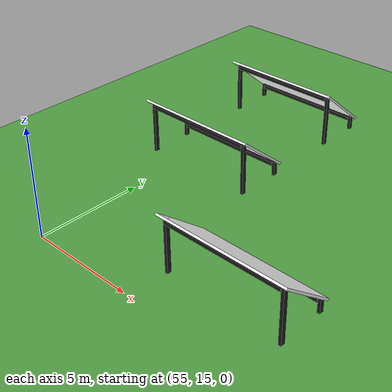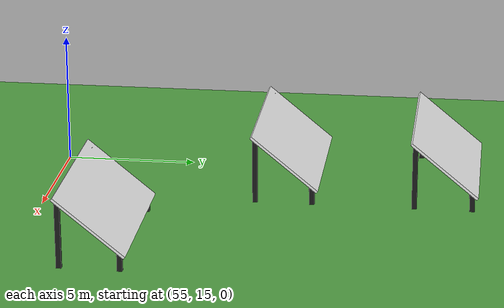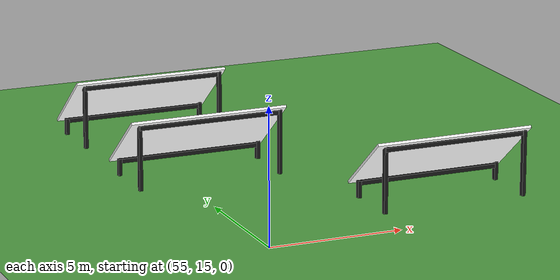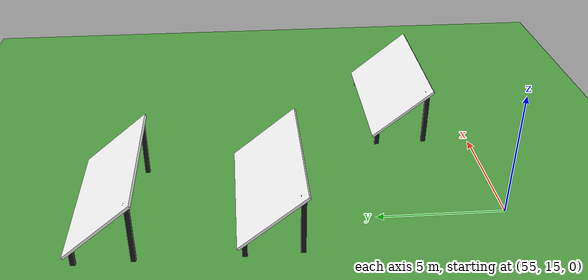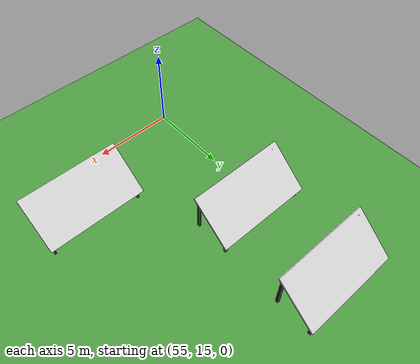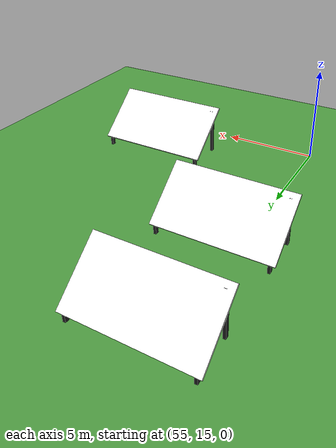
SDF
<sdf version="1.6">
 <world name="default">
  <model name="panel_7_3">
   <static>1</static>
   <link name="link_1">
    <inertial>
     <mass>1.98638</mass>
     <inertia><ixx>1.74251</ixx><ixy>0</ixy><ixz>0</ixz><iyy>6.11467</iyy><iyz>0</iyz><izz>7.85383</izz></inertia>
    </inertial>
    <pose>-0.040001 0.043327 0.560753 -0.688467 0 0</pose>
    <visual name="visual">
     <geometry><box><size>6.07696 3.24293 0.100789</size></box></geometry>
     <material>
      <lighting>1</lighting>
      <script>
       <uri>model://new_solar/materials/scripts</uri>
       <uri>model://new_solar/materials/textures</uri>
       <name>solar</name>
      </script>
      <shader type="pixel"><normal_map>__default__</normal_map></shader>
      <ambient>1 1 1 1</ambient>
      <diffuse>1 1 1 1</diffuse>
      <specular>0 0 0 1</specular>
      <emissive>0 0 0 1</emissive>
     </material>
    </visual>
    <collision name="collision">
     <geometry><box><size>6.07696 3.24293 0.100789</size></box></geometry>
     <surface>
      <friction>
       <ode><mu>1</mu><mu2>1</mu2><fdir1>0 0 0</fdir1><slip1>0</slip1><slip2>0</slip2></ode>
       <torsional>
        <coefficient>1</coefficient>
        <patch_radius>0</patch_radius>
        <surface_radius>0</surface_radius>
        <use_patch_radius>1</use_patch_radius>
        <ode><slip>0</slip></ode>
       </torsional>
      </friction>
      <bounce><restitution_coefficient>0</restitution_coefficient><threshold>1e+06</threshold></bounce>
      <contact>
       <collide_without_contact>0</collide_without_contact>
       <collide_without_contact_bitmask>1</collide_without_contact_bitmask>
       <collide_bitmask>1</collide_bitmask>
       <ode>
        <soft_cfm>0</soft_cfm>
        <soft_erp>0.2</soft_erp>
        <kp>1e+13</kp>
        <kd>1</kd>
        <max_vel>0.01</max_vel>
        <min_depth>0</min_depth>
       </ode>
       <bullet>
        <split_impulse>1</split_impulse>
        <split_impulse_penetration_threshold>-0.01</split_impulse_penetration_threshold>
        <soft_cfm>0</soft_cfm>
        <soft_erp>0.2</soft_erp>
        <kp>1e+13</kp>
        <kd>1</kd>
       </bullet>
      </contact>
     </surface>
    </collision>
   </link>
   <link name="link_2">
    <inertial>
     <mass>0.0207671</mass>
     <inertia>
      <ixx>0.0012143</ixx>
      <ixy>0</ixy>
      <ixz>0</ixz>
      <iyy>0.00118465</iyy>
      <iyz>0</iyz>
      <izz>9.301e-05</izz>
     </inertia>
    </inertial>
    <pose>2.8032 1.09463 -0.744944 0 -0 0</pose>
    <visual name="visual">
     <geometry><box><size>0.135288 0.188253 0.81623</size></box></geometry>
     <material>
      <lighting>1</lighting>
      <script><uri>file://media/materials/scripts/gazebo.material</uri><name>Gazebo/Black</name></script>
      <shader type="pixel"><normal_map>__default__</normal_map></shader>
      <ambient>0 0 0 1</ambient>
      <diffuse>0 0 0 1</diffuse>
      <specular>0.1 0.1 0.1 1</specular>
      <emissive>0 0 0 1</emissive>
     </material>
    </visual>
    <collision name="collision">
     <geometry><box><size>0.135288 0.188253 0.81623</size></box></geometry>
     <surface>
      <friction>
       <ode><mu>1</mu><mu2>1</mu2><fdir1>0 0 0</fdir1><slip1>0</slip1><slip2>0</slip2></ode>
       <torsional>
        <coefficient>1</coefficient>
        <patch_radius>0</patch_radius>
        <surface_radius>0</surface_radius>
        <use_patch_radius>1</use_patch_radius>
        <ode><slip>0</slip></ode>
       </torsional>
      </friction>
      <bounce><restitution_coefficient>0</restitution_coefficient><threshold>1e+06</threshold></bounce>
      <contact>
       <collide_without_contact>0</collide_without_contact>
       <collide_without_contact_bitmask>1</collide_without_contact_bitmask>
       <collide_bitmask>1</collide_bitmask>
       <ode>
        <soft_cfm>0</soft_cfm>
        <soft_erp>0.2</soft_erp>
        <kp>1e+13</kp>
        <kd>1</kd>
        <max_vel>0.01</max_vel>
        <min_depth>0</min_depth>
       </ode>
       <bullet>
        <split_impulse>1</split_impulse>
        <split_impulse_penetration_threshold>-0.01</split_impulse_penetration_threshold>
        <soft_cfm>0</soft_cfm>
        <soft_erp>0.2</soft_erp>
        <kp>1e+13</kp>
        <kd>1</kd>
       </bullet>
      </contact>
     </surface>
    </collision>
   </link>
   <link name="link_2_clone">
    <inertial>
     <mass>0.0207671</mass>
     <inertia>
      <ixx>0.0012143</ixx>
      <ixy>0</ixy>
      <ixz>0</ixz>
      <iyy>0.00118465</iyy>
      <iyz>0</iyz>
      <izz>9.301e-05</izz>
     </inertia>
    </inertial>
    <pose>-2.7581 1.05673 -0.787934 0 -0 0</pose>
    <visual name="visual">
     <geometry><box><size>0.135288 0.188253 0.81623</size></box></geometry>
     <material>
      <lighting>1</lighting>
      <script><uri>file://media/materials/scripts/gazebo.material</uri><name>Gazebo/Black</name></script>
      <shader type="pixel"><normal_map>__default__</normal_map></shader>
      <ambient>0 0 0 1</ambient>
      <diffuse>0 0 0 1</diffuse>
      <specular>0.1 0.1 0.1 1</specular>
      <emissive>0 0 0 1</emissive>
     </material>
    </visual>
    <collision name="collision">
     <geometry><box><size>0.135288 0.188253 0.81623</size></box></geometry>
     <surface>
      <friction>
       <ode><mu>1</mu><mu2>1</mu2><fdir1>0 0 0</fdir1><slip1>0</slip1><slip2>0</slip2></ode>
       <torsional>
        <coefficient>1</coefficient>
        <patch_radius>0</patch_radius>
        <surface_radius>0</surface_radius>
        <use_patch_radius>1</use_patch_radius>
        <ode><slip>0</slip></ode>
       </torsional>
      </friction>
      <bounce><restitution_coefficient>0</restitution_coefficient><threshold>1e+06</threshold></bounce>
      <contact>
       <collide_without_contact>0</collide_without_contact>
       <collide_without_contact_bitmask>1</collide_without_contact_bitmask>
       <collide_bitmask>1</collide_bitmask>
       <ode>
        <soft_cfm>0</soft_cfm>
        <soft_erp>0.2</soft_erp>
        <kp>1e+13</kp>
        <kd>1</kd>
        <max_vel>0.01</max_vel>
        <min_depth>0</min_depth>
       </ode>
       <bullet>
        <split_impulse>1</split_impulse>
        <split_impulse_penetration_threshold>-0.01</split_impulse_penetration_threshold>
        <soft_cfm>0</soft_cfm>
        <soft_erp>0.2</soft_erp>
        <kp>1e+13</kp>
        <kd>1</kd>
       </bullet>
      </contact>
     </surface>
    </collision>
   </link>
   <link name="link_2_clone_clone_clone">
    <inertial>
     <mass>0.0712376</mass>
     <inertia>
      <ixx>0.0467501</ixx>
      <ixy>0</ixy>
      <ixz>0</ixz>
      <iyy>0.0466484</iyy>
      <iyz>0</iyz>
      <izz>0.00031904</izz>
     </inertia>
    </inertial>
    <pose>2.7925 -1.06517 0.041693 0 -0 0</pose>
    <visual name="visual">
     <geometry><box><size>0.135288 0.188253 2.79994</size></box></geometry>
     <material>
      <lighting>1</lighting>
      <script><uri>file://media/materials/scripts/gazebo.material</uri><name>Gazebo/Black</name></script>
      <shader type="pixel"><normal_map>__default__</normal_map></shader>
      <ambient>0 0 0 1</ambient>
      <diffuse>0 0 0 1</diffuse>
      <specular>0.1 0.1 0.1 1</specular>
      <emissive>0 0 0 1</emissive>
     </material>
    </visual>
    <collision name="collision">
     <geometry><box><size>0.135288 0.188253 2.79994</size></box></geometry>
     <surface>
      <friction>
       <ode><mu>1</mu><mu2>1</mu2><fdir1>0 0 0</fdir1><slip1>0</slip1><slip2>0</slip2></ode>
       <torsional>
        <coefficient>1</coefficient>
        <patch_radius>0</patch_radius>
        <surface_radius>0</surface_radius>
        <use_patch_radius>1</use_patch_radius>
        <ode><slip>0</slip></ode>
       </torsional>
      </friction>
      <bounce><restitution_coefficient>0</restitution_coefficient><threshold>1e+06</threshold></bounce>
      <contact>
       <collide_without_contact>0</collide_without_contact>
       <collide_without_contact_bitmask>1</collide_without_contact_bitmask>
       <collide_bitmask>1</collide_bitmask>
       <ode>
        <soft_cfm>0</soft_cfm>
        <soft_erp>0.2</soft_erp>
        <kp>1e+13</kp>
        <kd>1</kd>
        <max_vel>0.01</max_vel>
        <min_depth>0</min_depth>
       </ode>
       <bullet>
        <split_impulse>1</split_impulse>
        <split_impulse_penetration_threshold>-0.01</split_impulse_penetration_threshold>
        <soft_cfm>0</soft_cfm>
        <soft_erp>0.2</soft_erp>
        <kp>1e+13</kp>
        <kd>1</kd>
       </bullet>
      </contact>
     </surface>
    </collision>
   </link>
   <link name="link_2_clone_clone_clone_clone">
    <inertial>
     <mass>0.0712376</mass>
     <inertia>
      <ixx>0.0467501</ixx>
      <ixy>0</ixy>
      <ixz>0</ixz>
      <iyy>0.0466484</iyy>
      <iyz>0</iyz>
      <izz>0.00031904</izz>
     </inertia>
    </inertial>
    <pose>-2.71279 -1.03577 0.041693 0 -0 0</pose>
    <visual name="visual">
     <geometry><box><size>0.135288 0.188253 2.79994</size></box></geometry>
     <material>
      <lighting>1</lighting>
      <script><uri>file://media/materials/scripts/gazebo.material</uri><name>Gazebo/Black</name></script>
      <shader type="pixel"><normal_map>__default__</normal_map></shader>
      <ambient>0 0 0 1</ambient>
      <diffuse>0 0 0 1</diffuse>
      <specular>0.1 0.1 0.1 1</specular>
      <emissive>0 0 0 1</emissive>
     </material>
    </visual>
    <collision name="collision">
     <geometry><box><size>0.135288 0.188253 2.79994</size></box></geometry>
     <surface>
      <friction>
       <ode><mu>1</mu><mu2>1</mu2><fdir1>0 0 0</fdir1><slip1>0</slip1><slip2>0</slip2></ode>
       <torsional>
        <coefficient>1</coefficient>
        <patch_radius>0</patch_radius>
        <surface_radius>0</surface_radius>
        <use_patch_radius>1</use_patch_radius>
        <ode><slip>0</slip></ode>
       </torsional>
      </friction>
      <bounce><restitution_coefficient>0</restitution_coefficient><threshold>1e+06</threshold></bounce>
      <contact>
       <collide_without_contact>0</collide_without_contact>
       <collide_without_contact_bitmask>1</collide_without_contact_bitmask>
       <collide_bitmask>1</collide_bitmask>
       <ode>
        <soft_cfm>0</soft_cfm>
        <soft_erp>0.2</soft_erp>
        <kp>1e+13</kp>
        <kd>1</kd>
        <max_vel>0.01</max_vel>
        <min_depth>0</min_depth>
       </ode>
       <bullet>
        <split_impulse>1</split_impulse>
        <split_impulse_penetration_threshold>-0.01</split_impulse_penetration_threshold>
        <soft_cfm>0</soft_cfm>
        <soft_erp>0.2</soft_erp>
        <kp>1e+13</kp>
        <kd>1</kd>
       </bullet>
      </contact>
     </surface>
    </collision>
   </link>
   <link name="link_3">
    <inertial>
     <mass>0.133626</mass>
     <inertia>
      <ixx>0.00054826</ixx>
      <ixy>0</ixy>
      <ixz>0</ixz>
      <iyy>0.330433</iyy>
      <iyz>0</iyz>
      <izz>0.330457</izz>
     </inertia>
    </inertial>
    <pose>0 1.04453 -0.461177 0 -0 0</pose>
    <visual name="visual">
     <geometry><box><size>5.44521 0.160272 0.153456</size></box></geometry>
     <material>
      <lighting>1</lighting>
      <script><uri>file://media/materials/scripts/gazebo.material</uri><name>Gazebo/Black</name></script>
      <shader type="pixel"><normal_map>__default__</normal_map></shader>
      <ambient>0 0 0 1</ambient>
      <diffuse>0 0 0 1</diffuse>
      <specular>0.1 0.1 0.1 1</specular>
      <emissive>0 0 0 1</emissive>
     </material>
    </visual>
    <collision name="collision">
     <geometry><box><size>5.44521 0.160272 0.153456</size></box></geometry>
     <surface>
      <friction>
       <ode><mu>1</mu><mu2>1</mu2><fdir1>0 0 0</fdir1><slip1>0</slip1><slip2>0</slip2></ode>
       <torsional>
        <coefficient>1</coefficient>
        <patch_radius>0</patch_radius>
        <surface_radius>0</surface_radius>
        <use_patch_radius>1</use_patch_radius>
        <ode><slip>0</slip></ode>
       </torsional>
      </friction>
      <bounce><restitution_coefficient>0</restitution_coefficient><threshold>1e+06</threshold></bounce>
      <contact>
       <collide_without_contact>0</collide_without_contact>
       <collide_without_contact_bitmask>1</collide_without_contact_bitmask>
       <collide_bitmask>1</collide_bitmask>
       <ode>
        <soft_cfm>0</soft_cfm>
        <soft_erp>0.2</soft_erp>
        <kp>1e+13</kp>
        <kd>1</kd>
        <max_vel>0.01</max_vel>
        <min_depth>0</min_depth>
       </ode>
       <bullet>
        <split_impulse>1</split_impulse>
        <split_impulse_penetration_threshold>-0.01</split_impulse_penetration_threshold>
        <soft_cfm>0</soft_cfm>
        <soft_erp>0.2</soft_erp>
        <kp>1e+13</kp>
        <kd>1</kd>
       </bullet>
      </contact>
     </surface>
    </collision>
   </link>
   <link name="link_3_clone">
    <inertial>
     <mass>0.133626</mass>
     <inertia>
      <ixx>0.00054826</ixx>
      <ixy>0</ixy>
      <ixz>0</ixz>
      <iyy>0.330433</iyy>
      <iyz>0</iyz>
      <izz>0.330457</izz>
     </inertia>
    </inertial>
    <pose>-0.0149 -1.07367 1.34991 0 -0 0</pose>
    <visual name="visual">
     <geometry><box><size>5.44521 0.160272 0.153456</size></box></geometry>
     <material>
      <lighting>1</lighting>
      <script><uri>file://media/materials/scripts/gazebo.material</uri><name>Gazebo/Black</name></script>
      <shader type="pixel"><normal_map>__default__</normal_map></shader>
      <ambient>0 0 0 1</ambient>
      <diffuse>0 0 0 1</diffuse>
      <specular>0.1 0.1 0.1 1</specular>
      <emissive>0 0 0 1</emissive>
     </material>
    </visual>
    <collision name="collision">
     <geometry><box><size>5.44521 0.160272 0.153456</size></box></geometry>
     <surface>
      <friction>
       <ode><mu>1</mu><mu2>1</mu2><fdir1>0 0 0</fdir1><slip1>0</slip1><slip2>0</slip2></ode>
       <torsional>
        <coefficient>1</coefficient>
        <patch_radius>0</patch_radius>
        <surface_radius>0</surface_radius>
        <use_patch_radius>1</use_patch_radius>
        <ode><slip>0</slip></ode>
       </torsional>
      </friction>
      <bounce><restitution_coefficient>0</restitution_coefficient><threshold>1e+06</threshold></bounce>
      <contact>
       <collide_without_contact>0</collide_without_contact>
       <collide_without_contact_bitmask>1</collide_without_contact_bitmask>
       <collide_bitmask>1</collide_bitmask>
       <ode>
        <soft_cfm>0</soft_cfm>
        <soft_erp>0.2</soft_erp>
        <kp>1e+13</kp>
        <kd>1</kd>
        <max_vel>0.01</max_vel>
        <min_depth>0</min_depth>
       </ode>
       <bullet>
        <split_impulse>1</split_impulse>
        <split_impulse_penetration_threshold>-0.01</split_impulse_penetration_threshold>
        <soft_cfm>0</soft_cfm>
        <soft_erp>0.2</soft_erp>
        <kp>1e+13</kp>
        <kd>1</kd>
       </bullet>
      </contact>
     </surface>
    </collision>
   </link>
   <pose>56 24 1 0 -0 0</pose>
  </model>
  <model name="panel_7_4">
   <static>1</static>
   <link name="link_1">
    <inertial>
     <mass>1.98638</mass>
     <inertia><ixx>1.74251</ixx><ixy>0</ixy><ixz>0</ixz><iyy>6.11467</iyy><iyz>0</iyz><izz>7.85383</izz></inertia>
    </inertial>
    <pose>-0.040001 0.043327 0.560753 -0.688467 0 0</pose>
    <visual name="visual">
     <geometry><box><size>6.07696 3.24293 0.100789</size></box></geometry>
     <material>
      <lighting>1</lighting>
      <script>
       <uri>model://new_solar/materials/scripts</uri>
       <uri>model://new_solar/materials/textures</uri>
       <name>solar</name>
      </script>
      <shader type="pixel"><normal_map>__default__</normal_map></shader>
      <ambient>1 1 1 1</ambient>
      <diffuse>1 1 1 1</diffuse>
      <specular>0 0 0 1</specular>
      <emissive>0 0 0 1</emissive>
     </material>
    </visual>
    <collision name="collision">
     <geometry><box><size>6.07696 3.24293 0.100789</size></box></geometry>
     <surface>
      <friction>
       <ode><mu>1</mu><mu2>1</mu2><fdir1>0 0 0</fdir1><slip1>0</slip1><slip2>0</slip2></ode>
       <torsional>
        <coefficient>1</coefficient>
        <patch_radius>0</patch_radius>
        <surface_radius>0</surface_radius>
        <use_patch_radius>1</use_patch_radius>
        <ode><slip>0</slip></ode>
       </torsional>
      </friction>
      <bounce><restitution_coefficient>0</restitution_coefficient><threshold>1e+06</threshold></bounce>
      <contact>
       <collide_without_contact>0</collide_without_contact>
       <collide_without_contact_bitmask>1</collide_without_contact_bitmask>
       <collide_bitmask>1</collide_bitmask>
       <ode>
        <soft_cfm>0</soft_cfm>
        <soft_erp>0.2</soft_erp>
        <kp>1e+13</kp>
        <kd>1</kd>
        <max_vel>0.01</max_vel>
        <min_depth>0</min_depth>
       </ode>
       <bullet>
        <split_impulse>1</split_impulse>
        <split_impulse_penetration_threshold>-0.01</split_impulse_penetration_threshold>
        <soft_cfm>0</soft_cfm>
        <soft_erp>0.2</soft_erp>
        <kp>1e+13</kp>
        <kd>1</kd>
       </bullet>
      </contact>
     </surface>
    </collision>
   </link>
   <link name="link_2">
    <inertial>
     <mass>0.0207671</mass>
     <inertia>
      <ixx>0.0012143</ixx>
      <ixy>0</ixy>
      <ixz>0</ixz>
      <iyy>0.00118465</iyy>
      <iyz>0</iyz>
      <izz>9.301e-05</izz>
     </inertia>
    </inertial>
    <pose>2.8032 1.09463 -0.744944 0 -0 0</pose>
    <visual name="visual">
     <geometry><box><size>0.135288 0.188253 0.81623</size></box></geometry>
     <material>
      <lighting>1</lighting>
      <script><uri>file://media/materials/scripts/gazebo.material</uri><name>Gazebo/Black</name></script>
      <shader type="pixel"><normal_map>__default__</normal_map></shader>
      <ambient>0 0 0 1</ambient>
      <diffuse>0 0 0 1</diffuse>
      <specular>0.1 0.1 0.1 1</specular>
      <emissive>0 0 0 1</emissive>
     </material>
    </visual>
    <collision name="collision">
     <geometry><box><size>0.135288 0.188253 0.81623</size></box></geometry>
     <surface>
      <friction>
       <ode><mu>1</mu><mu2>1</mu2><fdir1>0 0 0</fdir1><slip1>0</slip1><slip2>0</slip2></ode>
       <torsional>
        <coefficient>1</coefficient>
        <patch_radius>0</patch_radius>
        <surface_radius>0</surface_radius>
        <use_patch_radius>1</use_patch_radius>
        <ode><slip>0</slip></ode>
       </torsional>
      </friction>
      <bounce><restitution_coefficient>0</restitution_coefficient><threshold>1e+06</threshold></bounce>
      <contact>
       <collide_without_contact>0</collide_without_contact>
       <collide_without_contact_bitmask>1</collide_without_contact_bitmask>
       <collide_bitmask>1</collide_bitmask>
       <ode>
        <soft_cfm>0</soft_cfm>
        <soft_erp>0.2</soft_erp>
        <kp>1e+13</kp>
        <kd>1</kd>
        <max_vel>0.01</max_vel>
        <min_depth>0</min_depth>
       </ode>
       <bullet>
        <split_impulse>1</split_impulse>
        <split_impulse_penetration_threshold>-0.01</split_impulse_penetration_threshold>
        <soft_cfm>0</soft_cfm>
        <soft_erp>0.2</soft_erp>
        <kp>1e+13</kp>
        <kd>1</kd>
       </bullet>
      </contact>
     </surface>
    </collision>
   </link>
   <link name="link_2_clone">
    <inertial>
     <mass>0.0207671</mass>
     <inertia>
      <ixx>0.0012143</ixx>
      <ixy>0</ixy>
      <ixz>0</ixz>
      <iyy>0.00118465</iyy>
      <iyz>0</iyz>
      <izz>9.301e-05</izz>
     </inertia>
    </inertial>
    <pose>-2.7581 1.05673 -0.787934 0 -0 0</pose>
    <visual name="visual">
     <geometry><box><size>0.135288 0.188253 0.81623</size></box></geometry>
     <material>
      <lighting>1</lighting>
      <script><uri>file://media/materials/scripts/gazebo.material</uri><name>Gazebo/Black</name></script>
      <shader type="pixel"><normal_map>__default__</normal_map></shader>
      <ambient>0 0 0 1</ambient>
      <diffuse>0 0 0 1</diffuse>
      <specular>0.1 0.1 0.1 1</specular>
      <emissive>0 0 0 1</emissive>
     </material>
    </visual>
    <collision name="collision">
     <geometry><box><size>0.135288 0.188253 0.81623</size></box></geometry>
     <surface>
      <friction>
       <ode><mu>1</mu><mu2>1</mu2><fdir1>0 0 0</fdir1><slip1>0</slip1><slip2>0</slip2></ode>
       <torsional>
        <coefficient>1</coefficient>
        <patch_radius>0</patch_radius>
        <surface_radius>0</surface_radius>
        <use_patch_radius>1</use_patch_radius>
        <ode><slip>0</slip></ode>
       </torsional>
      </friction>
      <bounce><restitution_coefficient>0</restitution_coefficient><threshold>1e+06</threshold></bounce>
      <contact>
       <collide_without_contact>0</collide_without_contact>
       <collide_without_contact_bitmask>1</collide_without_contact_bitmask>
       <collide_bitmask>1</collide_bitmask>
       <ode>
        <soft_cfm>0</soft_cfm>
        <soft_erp>0.2</soft_erp>
        <kp>1e+13</kp>
        <kd>1</kd>
        <max_vel>0.01</max_vel>
        <min_depth>0</min_depth>
       </ode>
       <bullet>
        <split_impulse>1</split_impulse>
        <split_impulse_penetration_threshold>-0.01</split_impulse_penetration_threshold>
        <soft_cfm>0</soft_cfm>
        <soft_erp>0.2</soft_erp>
        <kp>1e+13</kp>
        <kd>1</kd>
       </bullet>
      </contact>
     </surface>
    </collision>
   </link>
   <link name="link_2_clone_clone_clone">
    <inertial>
     <mass>0.0712376</mass>
     <inertia>
      <ixx>0.0467501</ixx>
      <ixy>0</ixy>
      <ixz>0</ixz>
      <iyy>0.0466484</iyy>
      <iyz>0</iyz>
      <izz>0.00031904</izz>
     </inertia>
    </inertial>
    <pose>2.7925 -1.06517 0.041693 0 -0 0</pose>
    <visual name="visual">
     <geometry><box><size>0.135288 0.188253 2.79994</size></box></geometry>
     <material>
      <lighting>1</lighting>
      <script><uri>file://media/materials/scripts/gazebo.material</uri><name>Gazebo/Black</name></script>
      <shader type="pixel"><normal_map>__default__</normal_map></shader>
      <ambient>0 0 0 1</ambient>
      <diffuse>0 0 0 1</diffuse>
      <specular>0.1 0.1 0.1 1</specular>
      <emissive>0 0 0 1</emissive>
     </material>
    </visual>
    <collision name="collision">
     <geometry><box><size>0.135288 0.188253 2.79994</size></box></geometry>
     <surface>
      <friction>
       <ode><mu>1</mu><mu2>1</mu2><fdir1>0 0 0</fdir1><slip1>0</slip1><slip2>0</slip2></ode>
       <torsional>
        <coefficient>1</coefficient>
        <patch_radius>0</patch_radius>
        <surface_radius>0</surface_radius>
        <use_patch_radius>1</use_patch_radius>
        <ode><slip>0</slip></ode>
       </torsional>
      </friction>
      <bounce><restitution_coefficient>0</restitution_coefficient><threshold>1e+06</threshold></bounce>
      <contact>
       <collide_without_contact>0</collide_without_contact>
       <collide_without_contact_bitmask>1</collide_without_contact_bitmask>
       <collide_bitmask>1</collide_bitmask>
       <ode>
        <soft_cfm>0</soft_cfm>
        <soft_erp>0.2</soft_erp>
        <kp>1e+13</kp>
        <kd>1</kd>
        <max_vel>0.01</max_vel>
        <min_depth>0</min_depth>
       </ode>
       <bullet>
        <split_impulse>1</split_impulse>
        <split_impulse_penetration_threshold>-0.01</split_impulse_penetration_threshold>
        <soft_cfm>0</soft_cfm>
        <soft_erp>0.2</soft_erp>
        <kp>1e+13</kp>
        <kd>1</kd>
       </bullet>
      </contact>
     </surface>
    </collision>
   </link>
   <link name="link_2_clone_clone_clone_clone">
    <inertial>
     <mass>0.0712376</mass>
     <inertia>
      <ixx>0.0467501</ixx>
      <ixy>0</ixy>
      <ixz>0</ixz>
      <iyy>0.0466484</iyy>
      <iyz>0</iyz>
      <izz>0.00031904</izz>
     </inertia>
    </inertial>
    <pose>-2.71279 -1.03577 0.041693 0 -0 0</pose>
    <visual name="visual">
     <geometry><box><size>0.135288 0.188253 2.79994</size></box></geometry>
     <material>
      <lighting>1</lighting>
      <script><uri>file://media/materials/scripts/gazebo.material</uri><name>Gazebo/Black</name></script>
      <shader type="pixel"><normal_map>__default__</normal_map></shader>
      <ambient>0 0 0 1</ambient>
      <diffuse>0 0 0 1</diffuse>
      <specular>0.1 0.1 0.1 1</specular>
      <emissive>0 0 0 1</emissive>
     </material>
    </visual>
    <collision name="collision">
     <geometry><box><size>0.135288 0.188253 2.79994</size></box></geometry>
     <surface>
      <friction>
       <ode><mu>1</mu><mu2>1</mu2><fdir1>0 0 0</fdir1><slip1>0</slip1><slip2>0</slip2></ode>
       <torsional>
        <coefficient>1</coefficient>
        <patch_radius>0</patch_radius>
        <surface_radius>0</surface_radius>
        <use_patch_radius>1</use_patch_radius>
        <ode><slip>0</slip></ode>
       </torsional>
      </friction>
      <bounce><restitution_coefficient>0</restitution_coefficient><threshold>1e+06</threshold></bounce>
      <contact>
       <collide_without_contact>0</collide_without_contact>
       <collide_without_contact_bitmask>1</collide_without_contact_bitmask>
       <collide_bitmask>1</collide_bitmask>
       <ode>
        <soft_cfm>0</soft_cfm>
        <soft_erp>0.2</soft_erp>
        <kp>1e+13</kp>
        <kd>1</kd>
        <max_vel>0.01</max_vel>
        <min_depth>0</min_depth>
       </ode>
       <bullet>
        <split_impulse>1</split_impulse>
        <split_impulse_penetration_threshold>-0.01</split_impulse_penetration_threshold>
        <soft_cfm>0</soft_cfm>
        <soft_erp>0.2</soft_erp>
        <kp>1e+13</kp>
        <kd>1</kd>
       </bullet>
      </contact>
     </surface>
    </collision>
   </link>
   <link name="link_3">
    <inertial>
     <mass>0.133626</mass>
     <inertia>
      <ixx>0.00054826</ixx>
      <ixy>0</ixy>
      <ixz>0</ixz>
      <iyy>0.330433</iyy>
      <iyz>0</iyz>
      <izz>0.330457</izz>
     </inertia>
    </inertial>
    <pose>0 1.04453 -0.461177 0 -0 0</pose>
    <visual name="visual">
     <geometry><box><size>5.44521 0.160272 0.153456</size></box></geometry>
     <material>
      <lighting>1</lighting>
      <script><uri>file://media/materials/scripts/gazebo.material</uri><name>Gazebo/Black</name></script>
      <shader type="pixel"><normal_map>__default__</normal_map></shader>
      <ambient>0 0 0 1</ambient>
      <diffuse>0 0 0 1</diffuse>
      <specular>0.1 0.1 0.1 1</specular>
      <emissive>0 0 0 1</emissive>
     </material>
    </visual>
    <collision name="collision">
     <geometry><box><size>5.44521 0.160272 0.153456</size></box></geometry>
     <surface>
      <friction>
       <ode><mu>1</mu><mu2>1</mu2><fdir1>0 0 0</fdir1><slip1>0</slip1><slip2>0</slip2></ode>
       <torsional>
        <coefficient>1</coefficient>
        <patch_radius>0</patch_radius>
        <surface_radius>0</surface_radius>
        <use_patch_radius>1</use_patch_radius>
        <ode><slip>0</slip></ode>
       </torsional>
      </friction>
      <bounce><restitution_coefficient>0</restitution_coefficient><threshold>1e+06</threshold></bounce>
      <contact>
       <collide_without_contact>0</collide_without_contact>
       <collide_without_contact_bitmask>1</collide_without_contact_bitmask>
       <collide_bitmask>1</collide_bitmask>
       <ode>
        <soft_cfm>0</soft_cfm>
        <soft_erp>0.2</soft_erp>
        <kp>1e+13</kp>
        <kd>1</kd>
        <max_vel>0.01</max_vel>
        <min_depth>0</min_depth>
       </ode>
       <bullet>
        <split_impulse>1</split_impulse>
        <split_impulse_penetration_threshold>-0.01</split_impulse_penetration_threshold>
        <soft_cfm>0</soft_cfm>
        <soft_erp>0.2</soft_erp>
        <kp>1e+13</kp>
        <kd>1</kd>
       </bullet>
      </contact>
     </surface>
    </collision>
   </link>
   <link name="link_3_clone">
    <inertial>
     <mass>0.133626</mass>
     <inertia>
      <ixx>0.00054826</ixx>
      <ixy>0</ixy>
      <ixz>0</ixz>
      <iyy>0.330433</iyy>
      <iyz>0</iyz>
      <izz>0.330457</izz>
     </inertia>
    </inertial>
    <pose>-0.0149 -1.07367 1.34991 0 -0 0</pose>
    <visual name="visual">
     <geometry><box><size>5.44521 0.160272 0.153456</size></box></geometry>
     <material>
      <lighting>1</lighting>
      <script><uri>file://media/materials/scripts/gazebo.material</uri><name>Gazebo/Black</name></script>
      <shader type="pixel"><normal_map>__default__</normal_map></shader>
      <ambient>0 0 0 1</ambient>
      <diffuse>0 0 0 1</diffuse>
      <specular>0.1 0.1 0.1 1</specular>
      <emissive>0 0 0 1</emissive>
     </material>
    </visual>
    <collision name="collision">
     <geometry><box><size>5.44521 0.160272 0.153456</size></box></geometry>
     <surface>
      <friction>
       <ode><mu>1</mu><mu2>1</mu2><fdir1>0 0 0</fdir1><slip1>0</slip1><slip2>0</slip2></ode>
       <torsional>
        <coefficient>1</coefficient>
        <patch_radius>0</patch_radius>
        <surface_radius>0</surface_radius>
        <use_patch_radius>1</use_patch_radius>
        <ode><slip>0</slip></ode>
       </torsional>
      </friction>
      <bounce><restitution_coefficient>0</restitution_coefficient><threshold>1e+06</threshold></bounce>
      <contact>
       <collide_without_contact>0</collide_without_contact>
       <collide_without_contact_bitmask>1</collide_without_contact_bitmask>
       <collide_bitmask>1</collide_bitmask>
       <ode>
        <soft_cfm>0</soft_cfm>
        <soft_erp>0.2</soft_erp>
        <kp>1e+13</kp>
        <kd>1</kd>
        <max_vel>0.01</max_vel>
        <min_depth>0</min_depth>
       </ode>
       <bullet>
        <split_impulse>1</split_impulse>
        <split_impulse_penetration_threshold>-0.01</split_impulse_penetration_threshold>
        <soft_cfm>0</soft_cfm>
        <soft_erp>0.2</soft_erp>
        <kp>1e+13</kp>
        <kd>1</kd>
       </bullet>
      </contact>
     </surface>
    </collision>
   </link>
   <pose>56 30 1 0 -0 0</pose>
  </model>
  <model name="panel_8_2">
   <static>1</static>
   <link name="link_1">
    <inertial>
     <mass>1.98638</mass>
     <inertia><ixx>1.74251</ixx><ixy>0</ixy><ixz>0</ixz><iyy>6.11467</iyy><iyz>0</iyz><izz>7.85383</izz></inertia>
    </inertial>
    <pose>-0.040001 0.043327 0.560753 -0.688467 0 0</pose>
    <visual name="visual">
     <geometry><box><size>6.07696 3.24293 0.100789</size></box></geometry>
     <material>
      <lighting>1</lighting>
      <script>
       <uri>model://new_solar/materials/scripts</uri>
       <uri>model://new_solar/materials/textures</uri>
       <name>solar</name>
      </script>
      <shader type="pixel"><normal_map>__default__</normal_map></shader>
      <ambient>1 1 1 1</ambient>
      <diffuse>1 1 1 1</diffuse>
      <specular>0 0 0 1</specular>
      <emissive>0 0 0 1</emissive>
     </material>
    </visual>
    <collision name="collision">
     <geometry><box><size>6.07696 3.24293 0.100789</size></box></geometry>
     <surface>
      <friction>
       <ode><mu>1</mu><mu2>1</mu2><fdir1>0 0 0</fdir1><slip1>0</slip1><slip2>0</slip2></ode>
       <torsional>
        <coefficient>1</coefficient>
        <patch_radius>0</patch_radius>
        <surface_radius>0</surface_radius>
        <use_patch_radius>1</use_patch_radius>
        <ode><slip>0</slip></ode>
       </torsional>
      </friction>
      <bounce><restitution_coefficient>0</restitution_coefficient><threshold>1e+06</threshold></bounce>
      <contact>
       <collide_without_contact>0</collide_without_contact>
       <collide_without_contact_bitmask>1</collide_without_contact_bitmask>
       <collide_bitmask>1</collide_bitmask>
       <ode>
        <soft_cfm>0</soft_cfm>
        <soft_erp>0.2</soft_erp>
        <kp>1e+13</kp>
        <kd>1</kd>
        <max_vel>0.01</max_vel>
        <min_depth>0</min_depth>
       </ode>
       <bullet>
        <split_impulse>1</split_impulse>
        <split_impulse_penetration_threshold>-0.01</split_impulse_penetration_threshold>
        <soft_cfm>0</soft_cfm>
        <soft_erp>0.2</soft_erp>
        <kp>1e+13</kp>
        <kd>1</kd>
       </bullet>
      </contact>
     </surface>
    </collision>
   </link>
   <link name="link_2">
    <inertial>
     <mass>0.0207671</mass>
     <inertia>
      <ixx>0.0012143</ixx>
      <ixy>0</ixy>
      <ixz>0</ixz>
      <iyy>0.00118465</iyy>
      <iyz>0</iyz>
      <izz>9.301e-05</izz>
     </inertia>
    </inertial>
    <pose>2.8032 1.09463 -0.744944 0 -0 0</pose>
    <visual name="visual">
     <geometry><box><size>0.135288 0.188253 0.81623</size></box></geometry>
     <material>
      <lighting>1</lighting>
      <script><uri>file://media/materials/scripts/gazebo.material</uri><name>Gazebo/Black</name></script>
      <shader type="pixel"><normal_map>__default__</normal_map></shader>
      <ambient>0 0 0 1</ambient>
      <diffuse>0 0 0 1</diffuse>
      <specular>0.1 0.1 0.1 1</specular>
      <emissive>0 0 0 1</emissive>
     </material>
    </visual>
    <collision name="collision">
     <geometry><box><size>0.135288 0.188253 0.81623</size></box></geometry>
     <surface>
      <friction>
       <ode><mu>1</mu><mu2>1</mu2><fdir1>0 0 0</fdir1><slip1>0</slip1><slip2>0</slip2></ode>
       <torsional>
        <coefficient>1</coefficient>
        <patch_radius>0</patch_radius>
        <surface_radius>0</surface_radius>
        <use_patch_radius>1</use_patch_radius>
        <ode><slip>0</slip></ode>
       </torsional>
      </friction>
      <bounce><restitution_coefficient>0</restitution_coefficient><threshold>1e+06</threshold></bounce>
      <contact>
       <collide_without_contact>0</collide_without_contact>
       <collide_without_contact_bitmask>1</collide_without_contact_bitmask>
       <collide_bitmask>1</collide_bitmask>
       <ode>
        <soft_cfm>0</soft_cfm>
        <soft_erp>0.2</soft_erp>
        <kp>1e+13</kp>
        <kd>1</kd>
        <max_vel>0.01</max_vel>
        <min_depth>0</min_depth>
       </ode>
       <bullet>
        <split_impulse>1</split_impulse>
        <split_impulse_penetration_threshold>-0.01</split_impulse_penetration_threshold>
        <soft_cfm>0</soft_cfm>
        <soft_erp>0.2</soft_erp>
        <kp>1e+13</kp>
        <kd>1</kd>
       </bullet>
      </contact>
     </surface>
    </collision>
   </link>
   <link name="link_2_clone">
    <inertial>
     <mass>0.0207671</mass>
     <inertia>
      <ixx>0.0012143</ixx>
      <ixy>0</ixy>
      <ixz>0</ixz>
      <iyy>0.00118465</iyy>
      <iyz>0</iyz>
      <izz>9.301e-05</izz>
     </inertia>
    </inertial>
    <pose>-2.7581 1.05673 -0.787934 0 -0 0</pose>
    <visual name="visual">
     <geometry><box><size>0.135288 0.188253 0.81623</size></box></geometry>
     <material>
      <lighting>1</lighting>
      <script><uri>file://media/materials/scripts/gazebo.material</uri><name>Gazebo/Black</name></script>
      <shader type="pixel"><normal_map>__default__</normal_map></shader>
      <ambient>0 0 0 1</ambient>
      <diffuse>0 0 0 1</diffuse>
      <specular>0.1 0.1 0.1 1</specular>
      <emissive>0 0 0 1</emissive>
     </material>
    </visual>
    <collision name="collision">
     <geometry><box><size>0.135288 0.188253 0.81623</size></box></geometry>
     <surface>
      <friction>
       <ode><mu>1</mu><mu2>1</mu2><fdir1>0 0 0</fdir1><slip1>0</slip1><slip2>0</slip2></ode>
       <torsional>
        <coefficient>1</coefficient>
        <patch_radius>0</patch_radius>
        <surface_radius>0</surface_radius>
        <use_patch_radius>1</use_patch_radius>
        <ode><slip>0</slip></ode>
       </torsional>
      </friction>
      <bounce><restitution_coefficient>0</restitution_coefficient><threshold>1e+06</threshold></bounce>
      <contact>
       <collide_without_contact>0</collide_without_contact>
       <collide_without_contact_bitmask>1</collide_without_contact_bitmask>
       <collide_bitmask>1</collide_bitmask>
       <ode>
        <soft_cfm>0</soft_cfm>
        <soft_erp>0.2</soft_erp>
        <kp>1e+13</kp>
        <kd>1</kd>
        <max_vel>0.01</max_vel>
        <min_depth>0</min_depth>
       </ode>
       <bullet>
        <split_impulse>1</split_impulse>
        <split_impulse_penetration_threshold>-0.01</split_impulse_penetration_threshold>
        <soft_cfm>0</soft_cfm>
        <soft_erp>0.2</soft_erp>
        <kp>1e+13</kp>
        <kd>1</kd>
       </bullet>
      </contact>
     </surface>
    </collision>
   </link>
   <link name="link_2_clone_clone_clone">
    <inertial>
     <mass>0.0712376</mass>
     <inertia>
      <ixx>0.0467501</ixx>
      <ixy>0</ixy>
      <ixz>0</ixz>
      <iyy>0.0466484</iyy>
      <iyz>0</iyz>
      <izz>0.00031904</izz>
     </inertia>
    </inertial>
    <pose>2.7925 -1.06517 0.041693 0 -0 0</pose>
    <visual name="visual">
     <geometry><box><size>0.135288 0.188253 2.79994</size></box></geometry>
     <material>
      <lighting>1</lighting>
      <script><uri>file://media/materials/scripts/gazebo.material</uri><name>Gazebo/Black</name></script>
      <shader type="pixel"><normal_map>__default__</normal_map></shader>
      <ambient>0 0 0 1</ambient>
      <diffuse>0 0 0 1</diffuse>
      <specular>0.1 0.1 0.1 1</specular>
      <emissive>0 0 0 1</emissive>
     </material>
    </visual>
    <collision name="collision">
     <geometry><box><size>0.135288 0.188253 2.79994</size></box></geometry>
     <surface>
      <friction>
       <ode><mu>1</mu><mu2>1</mu2><fdir1>0 0 0</fdir1><slip1>0</slip1><slip2>0</slip2></ode>
       <torsional>
        <coefficient>1</coefficient>
        <patch_radius>0</patch_radius>
        <surface_radius>0</surface_radius>
        <use_patch_radius>1</use_patch_radius>
        <ode><slip>0</slip></ode>
       </torsional>
      </friction>
      <bounce><restitution_coefficient>0</restitution_coefficient><threshold>1e+06</threshold></bounce>
      <contact>
       <collide_without_contact>0</collide_without_contact>
       <collide_without_contact_bitmask>1</collide_without_contact_bitmask>
       <collide_bitmask>1</collide_bitmask>
       <ode>
        <soft_cfm>0</soft_cfm>
        <soft_erp>0.2</soft_erp>
        <kp>1e+13</kp>
        <kd>1</kd>
        <max_vel>0.01</max_vel>
        <min_depth>0</min_depth>
       </ode>
       <bullet>
        <split_impulse>1</split_impulse>
        <split_impulse_penetration_threshold>-0.01</split_impulse_penetration_threshold>
        <soft_cfm>0</soft_cfm>
        <soft_erp>0.2</soft_erp>
        <kp>1e+13</kp>
        <kd>1</kd>
       </bullet>
      </contact>
     </surface>
    </collision>
   </link>
   <link name="link_2_clone_clone_clone_clone">
    <inertial>
     <mass>0.0712376</mass>
     <inertia>
      <ixx>0.0467501</ixx>
      <ixy>0</ixy>
      <ixz>0</ixz>
      <iyy>0.0466484</iyy>
      <iyz>0</iyz>
      <izz>0.00031904</izz>
     </inertia>
    </inertial>
    <pose>-2.71279 -1.03577 0.041693 0 -0 0</pose>
    <visual name="visual">
     <geometry><box><size>0.135288 0.188253 2.79994</size></box></geometry>
     <material>
      <lighting>1</lighting>
      <script><uri>file://media/materials/scripts/gazebo.material</uri><name>Gazebo/Black</name></script>
      <shader type="pixel"><normal_map>__default__</normal_map></shader>
      <ambient>0 0 0 1</ambient>
      <diffuse>0 0 0 1</diffuse>
      <specular>0.1 0.1 0.1 1</specular>
      <emissive>0 0 0 1</emissive>
     </material>
    </visual>
    <collision name="collision">
     <geometry><box><size>0.135288 0.188253 2.79994</size></box></geometry>
     <surface>
      <friction>
       <ode><mu>1</mu><mu2>1</mu2><fdir1>0 0 0</fdir1><slip1>0</slip1><slip2>0</slip2></ode>
       <torsional>
        <coefficient>1</coefficient>
        <patch_radius>0</patch_radius>
        <surface_radius>0</surface_radius>
        <use_patch_radius>1</use_patch_radius>
        <ode><slip>0</slip></ode>
       </torsional>
      </friction>
      <bounce><restitution_coefficient>0</restitution_coefficient><threshold>1e+06</threshold></bounce>
      <contact>
       <collide_without_contact>0</collide_without_contact>
       <collide_without_contact_bitmask>1</collide_without_contact_bitmask>
       <collide_bitmask>1</collide_bitmask>
       <ode>
        <soft_cfm>0</soft_cfm>
        <soft_erp>0.2</soft_erp>
        <kp>1e+13</kp>
        <kd>1</kd>
        <max_vel>0.01</max_vel>
        <min_depth>0</min_depth>
       </ode>
       <bullet>
        <split_impulse>1</split_impulse>
        <split_impulse_penetration_threshold>-0.01</split_impulse_penetration_threshold>
        <soft_cfm>0</soft_cfm>
        <soft_erp>0.2</soft_erp>
        <kp>1e+13</kp>
        <kd>1</kd>
       </bullet>
      </contact>
     </surface>
    </collision>
   </link>
   <link name="link_3">
    <inertial>
     <mass>0.133626</mass>
     <inertia>
      <ixx>0.00054826</ixx>
      <ixy>0</ixy>
      <ixz>0</ixz>
      <iyy>0.330433</iyy>
      <iyz>0</iyz>
      <izz>0.330457</izz>
     </inertia>
    </inertial>
    <pose>0 1.04453 -0.461177 0 -0 0</pose>
    <visual name="visual">
     <geometry><box><size>5.44521 0.160272 0.153456</size></box></geometry>
     <material>
      <lighting>1</lighting>
      <script><uri>file://media/materials/scripts/gazebo.material</uri><name>Gazebo/Black</name></script>
      <shader type="pixel"><normal_map>__default__</normal_map></shader>
      <ambient>0 0 0 1</ambient>
      <diffuse>0 0 0 1</diffuse>
      <specular>0.1 0.1 0.1 1</specular>
      <emissive>0 0 0 1</emissive>
     </material>
    </visual>
    <collision name="collision">
     <geometry><box><size>5.44521 0.160272 0.153456</size></box></geometry>
     <surface>
      <friction>
       <ode><mu>1</mu><mu2>1</mu2><fdir1>0 0 0</fdir1><slip1>0</slip1><slip2>0</slip2></ode>
       <torsional>
        <coefficient>1</coefficient>
        <patch_radius>0</patch_radius>
        <surface_radius>0</surface_radius>
        <use_patch_radius>1</use_patch_radius>
        <ode><slip>0</slip></ode>
       </torsional>
      </friction>
      <bounce><restitution_coefficient>0</restitution_coefficient><threshold>1e+06</threshold></bounce>
      <contact>
       <collide_without_contact>0</collide_without_contact>
       <collide_without_contact_bitmask>1</collide_without_contact_bitmask>
       <collide_bitmask>1</collide_bitmask>
       <ode>
        <soft_cfm>0</soft_cfm>
        <soft_erp>0.2</soft_erp>
        <kp>1e+13</kp>
        <kd>1</kd>
        <max_vel>0.01</max_vel>
        <min_depth>0</min_depth>
       </ode>
       <bullet>
        <split_impulse>1</split_impulse>
        <split_impulse_penetration_threshold>-0.01</split_impulse_penetration_threshold>
        <soft_cfm>0</soft_cfm>
        <soft_erp>0.2</soft_erp>
        <kp>1e+13</kp>
        <kd>1</kd>
       </bullet>
      </contact>
     </surface>
    </collision>
   </link>
   <link name="link_3_clone">
    <inertial>
     <mass>0.133626</mass>
     <inertia>
      <ixx>0.00054826</ixx>
      <ixy>0</ixy>
      <ixz>0</ixz>
      <iyy>0.330433</iyy>
      <iyz>0</iyz>
      <izz>0.330457</izz>
     </inertia>
    </inertial>
    <pose>-0.0149 -1.07367 1.34991 0 -0 0</pose>
    <visual name="visual">
     <geometry><box><size>5.44521 0.160272 0.153456</size></box></geometry>
     <material>
      <lighting>1</lighting>
      <script><uri>file://media/materials/scripts/gazebo.material</uri><name>Gazebo/Black</name></script>
      <shader type="pixel"><normal_map>__default__</normal_map></shader>
      <ambient>0 0 0 1</ambient>
      <diffuse>0 0 0 1</diffuse>
      <specular>0.1 0.1 0.1 1</specular>
      <emissive>0 0 0 1</emissive>
     </material>
    </visual>
    <collision name="collision">
     <geometry><box><size>5.44521 0.160272 0.153456</size></box></geometry>
     <surface>
      <friction>
       <ode><mu>1</mu><mu2>1</mu2><fdir1>0 0 0</fdir1><slip1>0</slip1><slip2>0</slip2></ode>
       <torsional>
        <coefficient>1</coefficient>
        <patch_radius>0</patch_radius>
        <surface_radius>0</surface_radius>
        <use_patch_radius>1</use_patch_radius>
        <ode><slip>0</slip></ode>
       </torsional>
      </friction>
      <bounce><restitution_coefficient>0</restitution_coefficient><threshold>1e+06</threshold></bounce>
      <contact>
       <collide_without_contact>0</collide_without_contact>
       <collide_without_contact_bitmask>1</collide_without_contact_bitmask>
       <collide_bitmask>1</collide_bitmask>
       <ode>
        <soft_cfm>0</soft_cfm>
        <soft_erp>0.2</soft_erp>
        <kp>1e+13</kp>
        <kd>1</kd>
        <max_vel>0.01</max_vel>
        <min_depth>0</min_depth>
       </ode>
       <bullet>
        <split_impulse>1</split_impulse>
        <split_impulse_penetration_threshold>-0.01</split_impulse_penetration_threshold>
        <soft_cfm>0</soft_cfm>
        <soft_erp>0.2</soft_erp>
        <kp>1e+13</kp>
        <kd>1</kd>
       </bullet>
      </contact>
     </surface>
    </collision>
   </link>
   <pose>63 18 1 0 -0 0</pose>
  </model>
  <model name="grass_plane">
   <static>1</static>
   <link name="grass">
    <collision name="collision">
     <geometry><plane><normal>0 0 1</normal><size>500 500</size></plane></geometry>
     <surface><friction><ode><mu>0.5</mu><mu2>0.5</mu2></ode></friction></surface>
    </collision>
    <visual name="visual_0">
     <cast_shadows>0</cast_shadows>
     <geometry><plane><normal>0 0 1</normal><size>500 500</size></plane></geometry>
     <material>
      <script>
       <uri>model://vrc_driving_terrain/materials/scripts</uri>
       <uri>model://vrc_driving_terrain/materials/textures</uri>
       <name>vrc/grass</name>
      </script>
     </material>
    </visual>
   </link>
   <pose>51.9388 23.7516 0 0 -0 0</pose>
  </model>
 </world>
</sdf>
